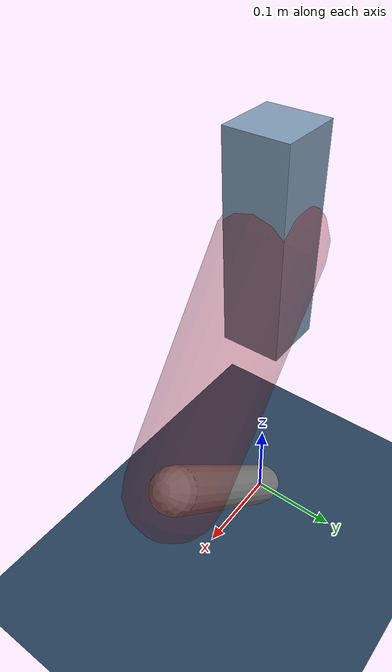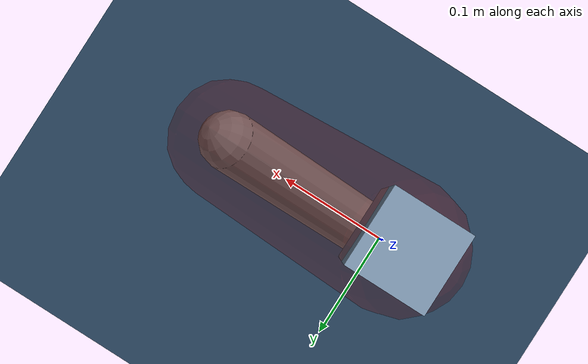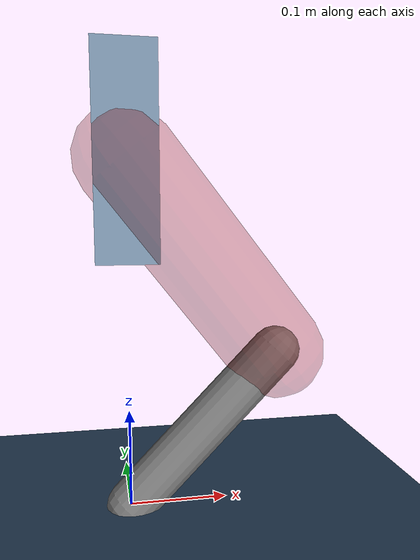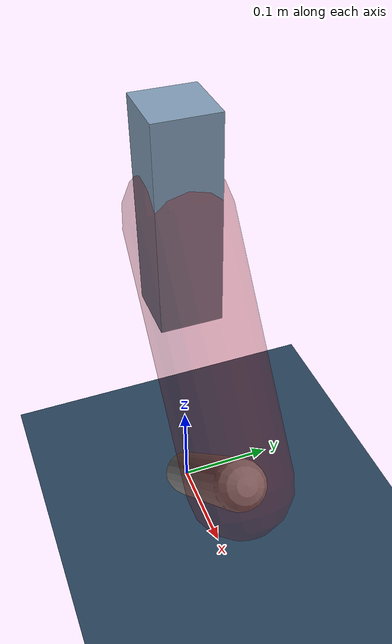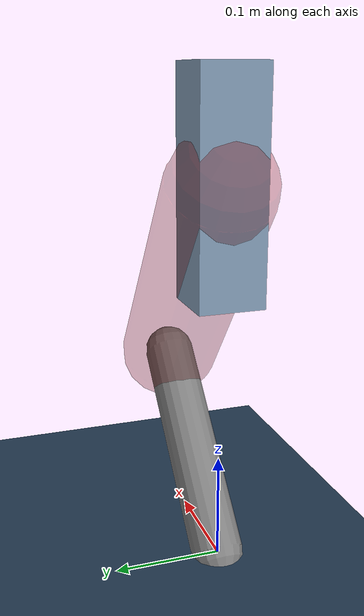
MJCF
<mujoco model="Hopper2D">
	<compiler inertiafromgeom="true" angle="radian" />
	<option timestep="0.001" integrator="implicit" cone="elliptic" solver="Newton" tolerance="1e-10" />

	<default>
		<geom contype="1" conaffinity="1" condim="3" friction="2 0.005 0.0001" solref="0.005 1" />
		<joint limited="true" damping="0.1" />
	</default>

	<asset>
		<texture name="skybox" type="skybox" builtin="gradient" rgb1=".4 .6 .8" rgb2="0 0 0" width="800" height="800" />
		<texture name="grid" type="2d" builtin="checker" rgb1=".1 .2 .3" rgb2=".2 .3 .4" width="300" height="300" mark="edge" markrgb=".2 .3 .4" />
		<material name="ground" texture="grid" texrepeat="1 1" texuniform="true" reflectance="0.1" />
		<material name="leg" rgba="0.5 0.6 0.7 1" />
	</asset>

	<worldbody>

		<geom name="floor" type="plane" size="5 5 0.25" material="ground" />

		<light directional="false" diffuse="0.8 0.8 0.8" specular="0.3 0.3 0.3" pos="0 0 2" dir="0 0 -1" />
		<light mode="targetbodycom" target="base" directional="false" diffuse="0.8 0.8 0.8" specular="0.3 0.3 0.3" pos="0 0 2" dir="0 0 -1" />

		<camera name="fixed" pos="0 -2 1" xyaxes="1 0 0 0 0 1" />
		<camera name="tracking" mode="trackcom" pos="0 -3 1" />

		<body name="root" pos="0 0 0.3507002385671935">
			<joint name="slide_x" type="slide" axis="1 0 0" range="-100 100" />
			<joint name="slide_z" type="slide" axis="0 0 1" range="0 10" />

			<body name="base" pos="0 0 0">
				<geom name="torso" type="box" size="0.03 0.03 0.1" mass="2.527" material="leg" />

				<body name="link1" pos="0 0 0" euler="0 0.9033494220475975 0">
					<joint type="hinge" axis="0 -1 0" pos="0 0 0" name="hinge1" limited="true" range="-3.14 3.14" stiffness="0" damping="0.1" />
					<geom name="thigh" type="capsule" fromto="0 0 0 0.24582936244417408 0 0" size="0.05" rgba="0.5 0 0 0.3" mass="0.8455734061104352" />

					<body name="link2" pos="0.24582936244417408 0 0" euler="0 1.4352200693336732 0">
						<joint type="hinge" axis="0 -1 0" pos="0 0 0" name="hinge2" limited="true" range="-3.14 3.14" stiffness="0" damping="0.1" />
						<geom name="shank" type="capsule" fromto="0 0 0 0.2190878494948476 0 0" size="0.025" mass="0.41687906454536283" />

					</body>
				</body>
			</body>
		</body>
	</worldbody>

	<actuator>
		<motor name="torque1" joint="hinge1" ctrlrange="-123.89420250532551 123.89420250532551" ctrllimited="true" gear="1" />
		<motor name="torque2" joint="hinge2" ctrlrange="-29.58364558516386 29.58364558516386" ctrllimited="true" gear="1" />
	</actuator>
</mujoco>
